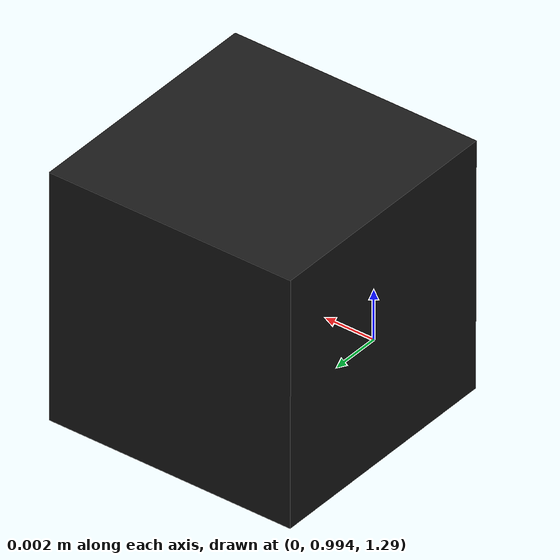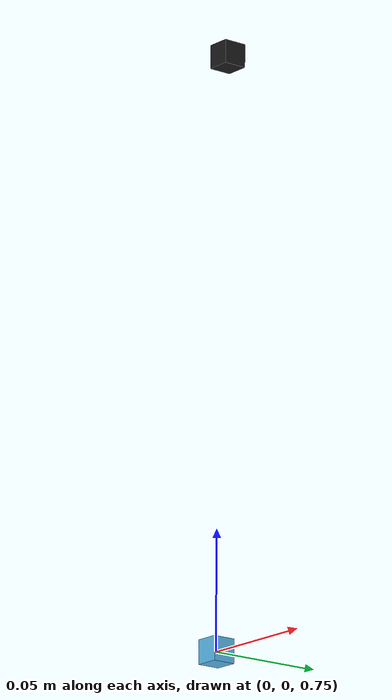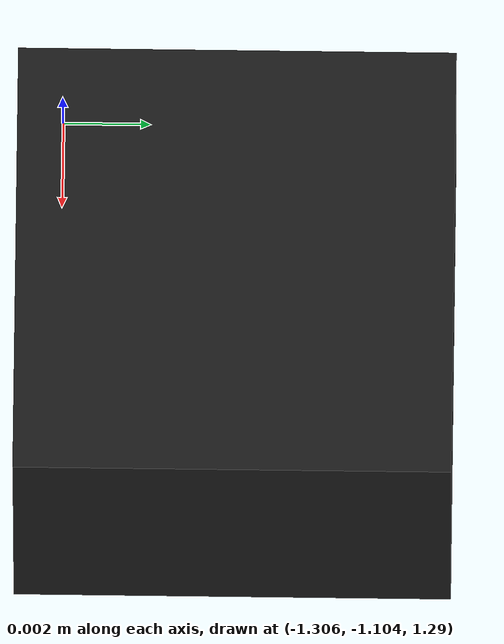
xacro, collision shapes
<?xml version="1.0" ?>

<robot name="simple_example" xmlns:xacro="http://www.ros.org/wiki/xacro">

<xacro:include filename="$(find mrm_description)/urdf/materials.xacro" />

<link name="world"/>

<joint name="fixed" type="fixed">
  <parent link="world"/>
  <child link="base_link"/>
</joint>

  <link name="base_link">
    <collision>
      <origin xyz="0 0 0.75" rpy="-3.1416 0 0"/>
      <geometry>
    <box size="0.01 0.01 0.01"/>
         <!--mesh filename="package://mrm_description/urdf/robot_arm_stl/basecone.STL" scale="0.01 0.01 0.01"/-->
      </geometry>
    </collision>

    <visual>
      <origin xyz="0 0 0.75" rpy="-3.1416 0 0"/>
      <geometry>
        <mesh filename="package://mrm_description/urdf/robot_arm_stl/basecone.STL" scale="0.01 0.01 0.01"/>
      </geometry>
    </visual>

    <inertial>
      <mass value="10" />
      <origin xyz="0 0 0.75" rpy="-3.1416 0 0"/>
      <inertia ixx="0.4" ixy="0.0" ixz="0.0" iyy="0.4" iyz="0.0" izz="0.2" />
    </inertial>
  </link>

    <joint name="joint2" type="revolute">
        <axis xyz="0 0 1" />
        <limit effort="1000.0" lower="-3.14" upper="3.14" velocity="0.5" />
        <origin rpy="0 0 0" xyz="0 0 0"/>
        <parent link="base_link"/>
        <child link="link_joint2"/>
        <!--dynamics damping="0.7"/-->
    </joint>

<link name="link_joint2">
    <collision>
         <origin xyz="0 0.005 1" rpy="0 3.1416 1.57"/>
      <geometry>
          <box size="0.01 0.01 0.01"/>
          <!--mesh filename="package://mrm_description/urdf/robot_arm_stl/zwerg.STL" scale="0.01 0.01 0.01"/-->
      </geometry>

    </collision>

    <visual>
      <!--origin xyz="0 0 0" rpy="0 0 -1.57"/-->
	  <origin xyz="-0.75 0 1.3" rpy="0 3.1416 1.57"/>
      <geometry>
        <mesh filename="package://mrm_description/urdf/robot_arm_stl/Joint2Support.STL" scale="0.01 0.01 0.01"/>
      </geometry>
      <!--material name="blue"/-->
         <material name="grey">
             <color rgba="0.1 0.1 0.1 1.0"/>
           </material>
    </visual>

    <inertial>
      <mass value="0.01" />
      <origin xyz="-0.32 0.005 0.365" rpy="0 3.1416 1.57"/>
      <inertia ixx="0.4" ixy="0.0" ixz="0.0" iyy="0.4" iyz="0.0" izz="0.2" />
    </inertial>
</link>

<joint name="joint3" type="revolute">
        <axis xyz="1 0 0" />
        <limit effort="1000.0" lower="-3.14" upper="3.14" velocity="0.5" />
        <origin rpy="-1.57 0 0" xyz="0 0 1.3"/>
        <parent link="link_joint2"/>
        <child link="link_joint3"/>
        <!--dynamics damping="0.7"/-->
</joint>

<link name="link_joint3">

    <visual>
      <!--origin xyz="0 0 0" rpy="0 0 -1.57"/-->
	  <origin xyz="-1.1 0 0" rpy="0 3.1416 1.57"/>
      <geometry>
        <mesh filename="package://mrm_description/urdf/robot_arm_stl/RohrHalterungJoint2_allinOne.STL" scale="0.01 0.01 0.01"/>
      </geometry>
      <!--material name="blue"/-->
         <material name="orange">
             <color rgba="0.1 0.1 0.1 1.0"/>
           </material>
    </visual>

    <collision>
         <origin xyz="0 0.005 1" rpy="0 3.1416 1.57"/>
      <geometry>
          <box size="0.01 0.01 0.01"/>
          <!--mesh filename="package://mrm_description/urdf/robot_arm_stl/zwerg.STL" scale="0.01 0.01 0.01"/-->
      </geometry>

    </collision>
    <inertial>
      <mass value="0.01" />
      <origin xyz="-0.32 0.005 0.365" rpy="0 3.1416 1.57"/>
      <inertia ixx="0.4" ixy="0.0" ixz="0.0" iyy="0.4" iyz="0.0" izz="0.2" />
    </inertial>
</link>

<joint name="joint4" type="revolute">
        <axis xyz="0 0 1" />
        <limit effort="1000.0" lower="-3.14" upper="3.14" velocity="0.5" />
        <origin rpy="0 0 0" xyz="-1.3 0 -2.1"/>
        <parent link="link_joint3"/>
        <child link="link_joint4"/>
        <!--dynamics damping="0.7"/-->
</joint>

<link name="link_joint4">

    <visual>
      <!--origin xyz="0 0 0" rpy="0 0 -1.57"/-->
	  <origin xyz="0 0 0" rpy="0 3.1416 1.57"/>
      <geometry>
        <mesh filename="package://mrm_description/urdf/robot_arm_stl/zwerg_Cylinder.STL" scale="0.01 0.01 0.01"/>
      </geometry>
      <!--material name="blue"/-->
         <material name="blue">
             <color rgba="0.1 0.1 0.1 1.0"/>
           </material>
    </visual>

    <collision>
         <origin xyz="0 0.005 1" rpy="0 3.1416 1.57"/>
      <geometry>
          <box size="0.01 0.01 0.01"/>
      </geometry>

    </collision>

    <inertial>
      <mass value="0.01" />
      <origin xyz="-0.32 0.005 0.365" rpy="0 3.1416 1.57"/>
      <inertia ixx="0.4" ixy="0.0" ixz="0.0" iyy="0.4" iyz="0.0" izz="0.2" />
    </inertial>
</link>

<gazebo>
    <plugin name="gazebo_ros_control" filename="libgazebo_ros_control.so">
      <robotNamespace></robotNamespace>
      <controlPeriod>0.001</controlPeriod>
      <robotSimType>gazebo_ros_control/DefaultRobotHWSim</robotSimType>
    </plugin>
</gazebo>

</robot>
